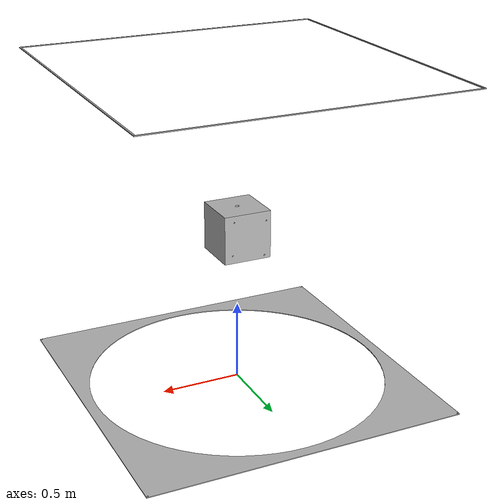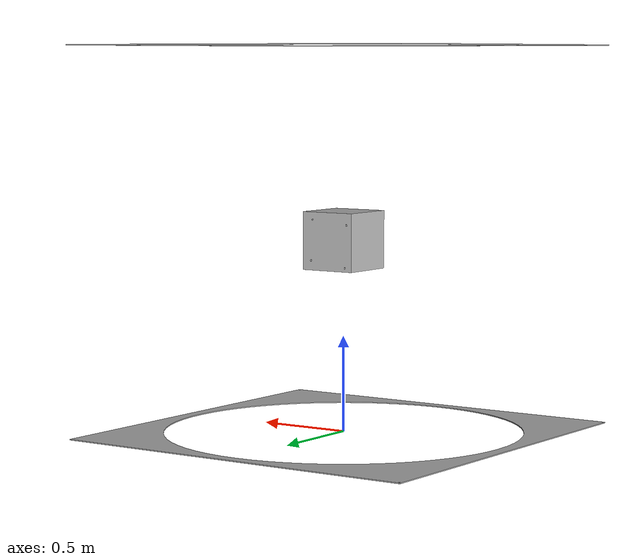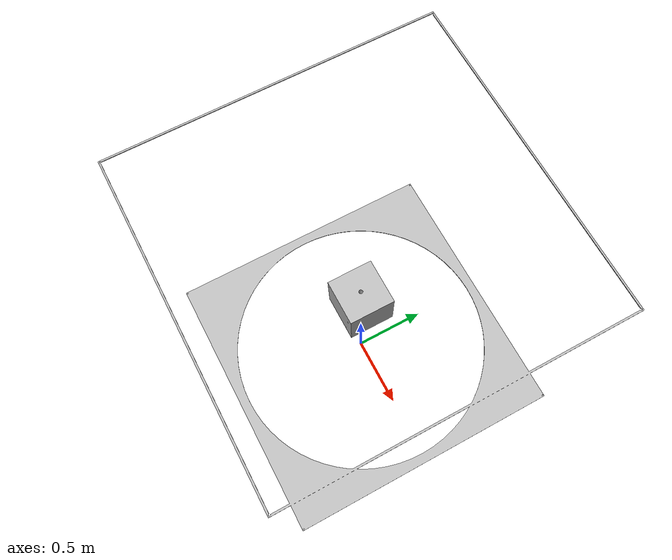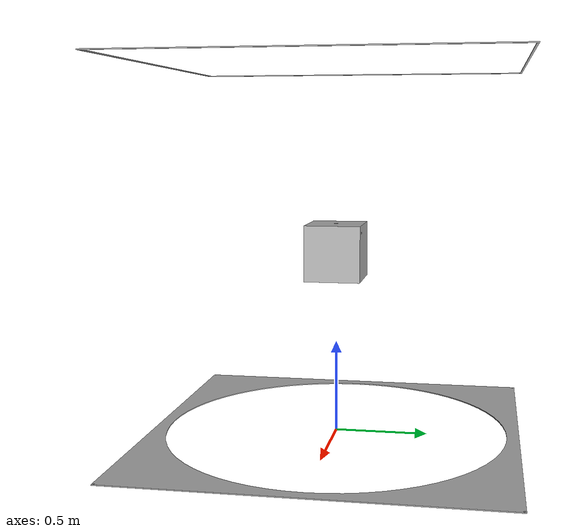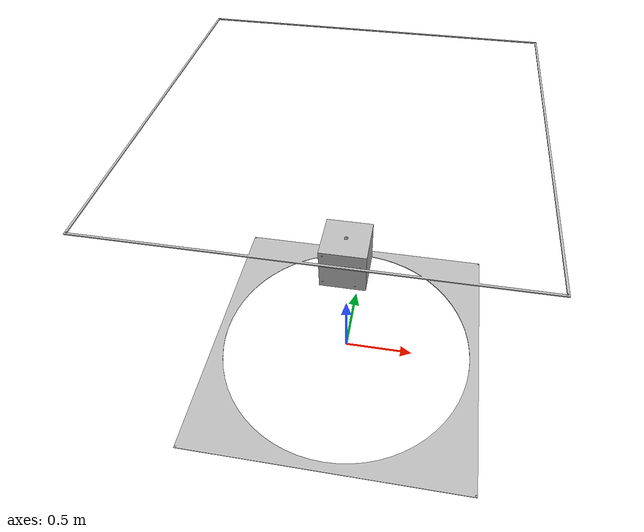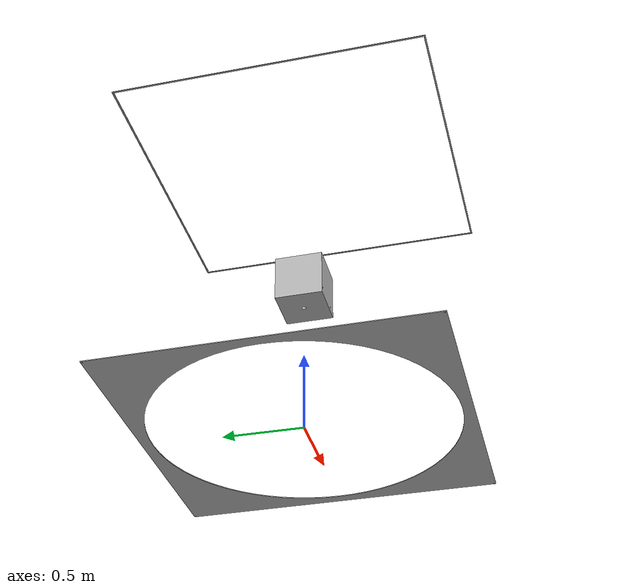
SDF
<?xml version="1.0" ?>
<sdf version="1.6">
	<model name="cable_robot_6dof">
		<link name="box">
			<pose frame="">0.0 0.0 1.0 0.0 -0.0 0.0</pose>
			<inertial>
				<pose frame="">0.0 0.0 0.0 0 0 0</pose>
				<mass>421.17547437107237</mass>
				<inertia>
					<ixx>427.51279331560903</ixx>
					<ixy>4.4698972989260225e-05</ixy>
					<ixz>2.6819383785221724e-05</ixz>
					<iyy>427.5136884253574</iyy>
					<iyz>-0.0013061348135274395</iyz>
					<izz>6.355012404795204</izz>
				</inertia>
			</inertial>
			<collision name="box_collision">
				<geometry>
					<mesh>
						<uri>model://cable_robot_6dof/meshes/CAD/box.stl</uri>
						<scale>0.001 0.001 0.001</scale>
					</mesh>
				</geometry>
			</collision>
			<visual name="box_visual">
				<geometry>
					<mesh>
						<uri>model://cable_robot_6dof/meshes/CAD/box.stl</uri>
						<scale>0.001 0.001 0.001</scale>
					</mesh>
				</geometry>
			</visual>
		</link>
		<link name="base">
			<pose frame="">0.0 0.0 0.0 0.0 -0.0 0.0</pose>
			<inertial>
				<pose frame="">0.0 0.0 0.0 0 0 0</pose>
				<mass>55.63196920449589</mass>
				<inertia>
					<ixx>57.94340475125009</ixx>
					<ixy>-1.4621764421463058e-15</ixy>
					<ixz>2.8726626624120397e-14</ixz>
					<iyy>57.943404751248885</iyy>
					<iyz>-4.456496753846295e-14</iyz>
					<izz>65.9204492395301</izz>
				</inertia>
			</inertial>
			<collision name="base_collision">
				<geometry>
					<mesh>
						<uri>model://cable_robot_6dof/meshes/CAD/base.stl</uri>
						<scale>0.001 0.001 0.001</scale>
					</mesh>
				</geometry>
			</collision>
			<visual name="base_visual">
				<geometry>
					<mesh>
						<uri>model://cable_robot_6dof/meshes/CAD/base.stl</uri>
						<scale>0.001 0.001 0.001</scale>
					</mesh>
				</geometry>
			</visual>
		</link>
		<plugin filename="libmyomuscle_plugin.so" name="myomuscle_plugin">
			<myoMuscle name="motor0">
				<link name="base">
					<viaPoint type="FIXPOINT">0.99 0.99 0.005</viaPoint>
				</link>
				<link name="box">
					<viaPoint type="FIXPOINT">0.1 0.15000000000000002 -0.1</viaPoint>
				</link>
			</myoMuscle>
			<myoMuscle name="motor1">
				<link name="base">
					<viaPoint type="FIXPOINT">-0.99 0.99 0.005</viaPoint>
				</link>
				<link name="box">
					<viaPoint type="FIXPOINT">-0.11 0.15000000000000002 -0.13</viaPoint>
				</link>
			</myoMuscle>
			<myoMuscle name="motor2">
				<link name="base">
					<viaPoint type="FIXPOINT">-0.99 -0.99 0.005</viaPoint>
				</link>
				<link name="box">
					<viaPoint type="FIXPOINT">-0.13 -0.14 -0.11</viaPoint>
				</link>
			</myoMuscle>
			<myoMuscle name="motor3">
				<link name="base">
					<viaPoint type="FIXPOINT">0.99 -0.99 0.005</viaPoint>
				</link>
				<link name="box">
					<viaPoint type="FIXPOINT">0.08 -0.15000000000000002 -0.12</viaPoint>
				</link>
			</myoMuscle>
			<myoMuscle name="motor4">
				<link name="base">
					<viaPoint type="FIXPOINT">0.99 0.99 2.0</viaPoint>
				</link>
				<link name="box">
					<viaPoint type="FIXPOINT">0.09 0.15000000000000002 0.11</viaPoint>
				</link>
			</myoMuscle>
			<myoMuscle name="motor5">
				<link name="base">
					<viaPoint type="FIXPOINT">-0.99 0.99 2.0</viaPoint>
				</link>
				<link name="box">
					<viaPoint type="FIXPOINT">-0.12 0.15000000000000002 0.09</viaPoint>
				</link>
			</myoMuscle>
			<myoMuscle name="motor6">
				<link name="base">
					<viaPoint type="FIXPOINT">-0.99 -0.99 2.005</viaPoint>
				</link>
				<link name="box">
					<viaPoint type="FIXPOINT">-0.125 -0.15000000000000002 0.125</viaPoint>
				</link>
			</myoMuscle>
			<myoMuscle name="motor7">
				<link name="base">
					<viaPoint type="FIXPOINT">0.99 -0.99 2.005</viaPoint>
				</link>
				<link name="box">
					<viaPoint type="FIXPOINT">0.11 -0.15000000000000002 0.06</viaPoint>
				</link>
			</myoMuscle>
		</plugin>
	</model>
</sdf>
